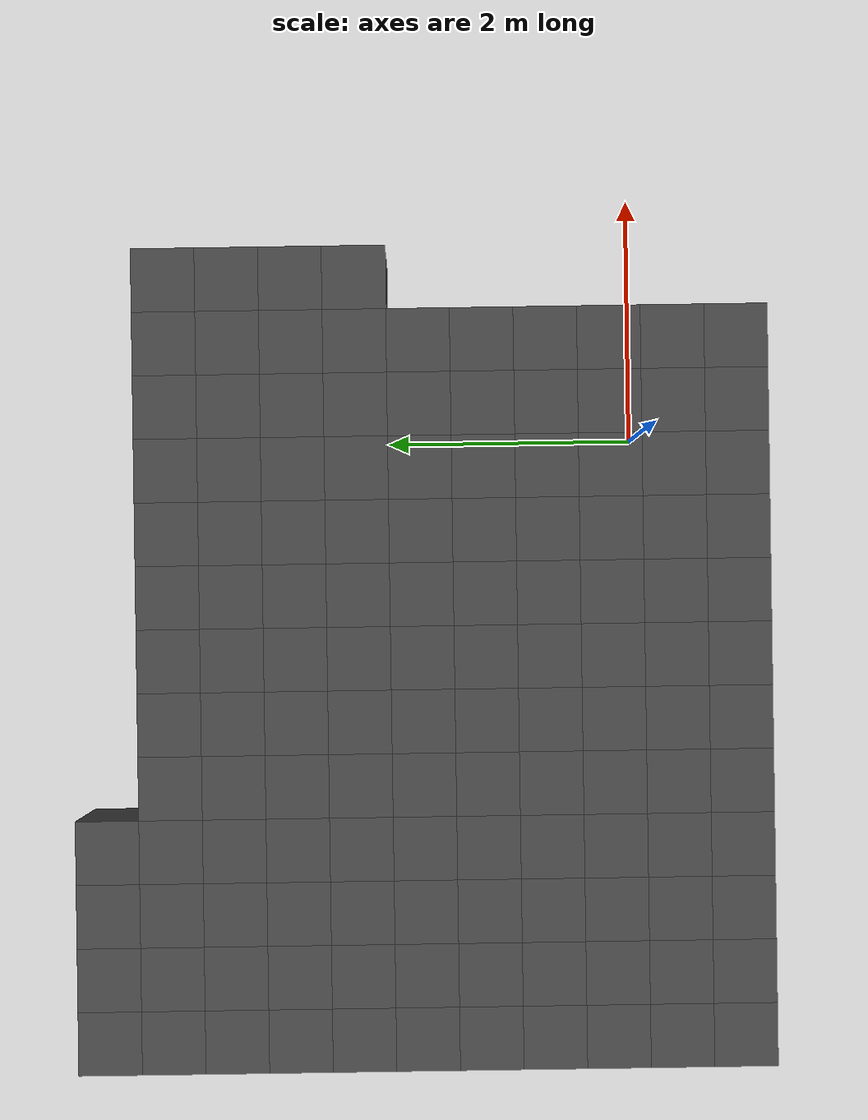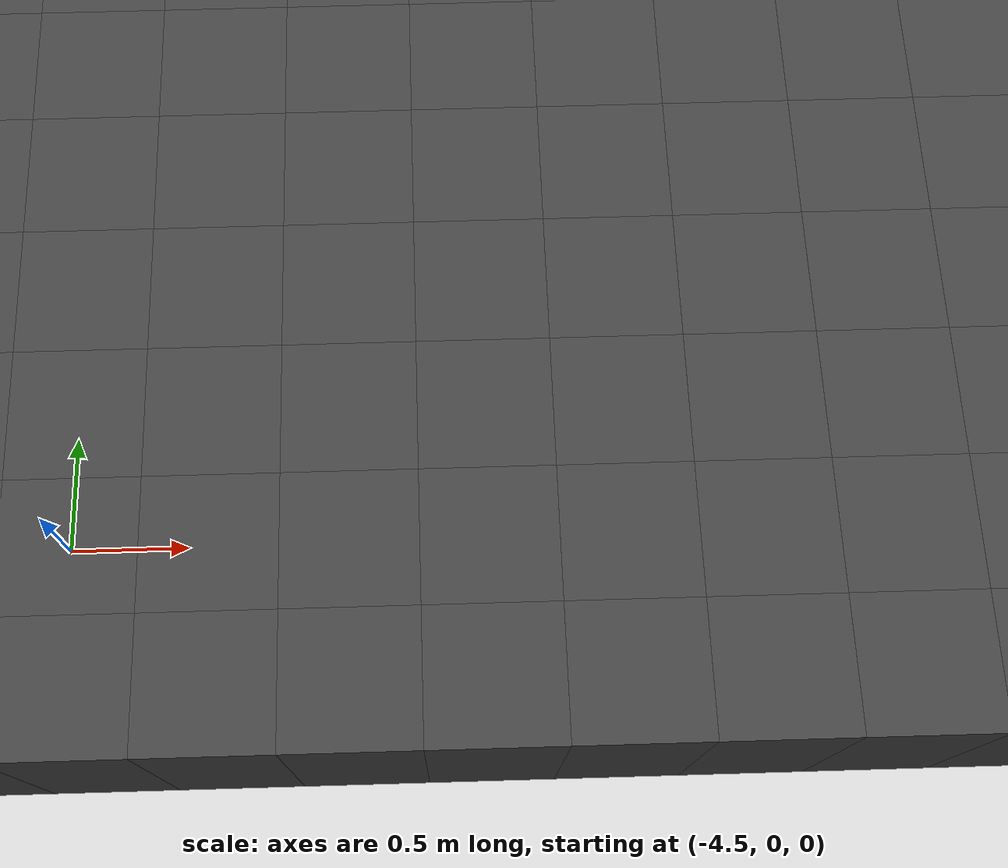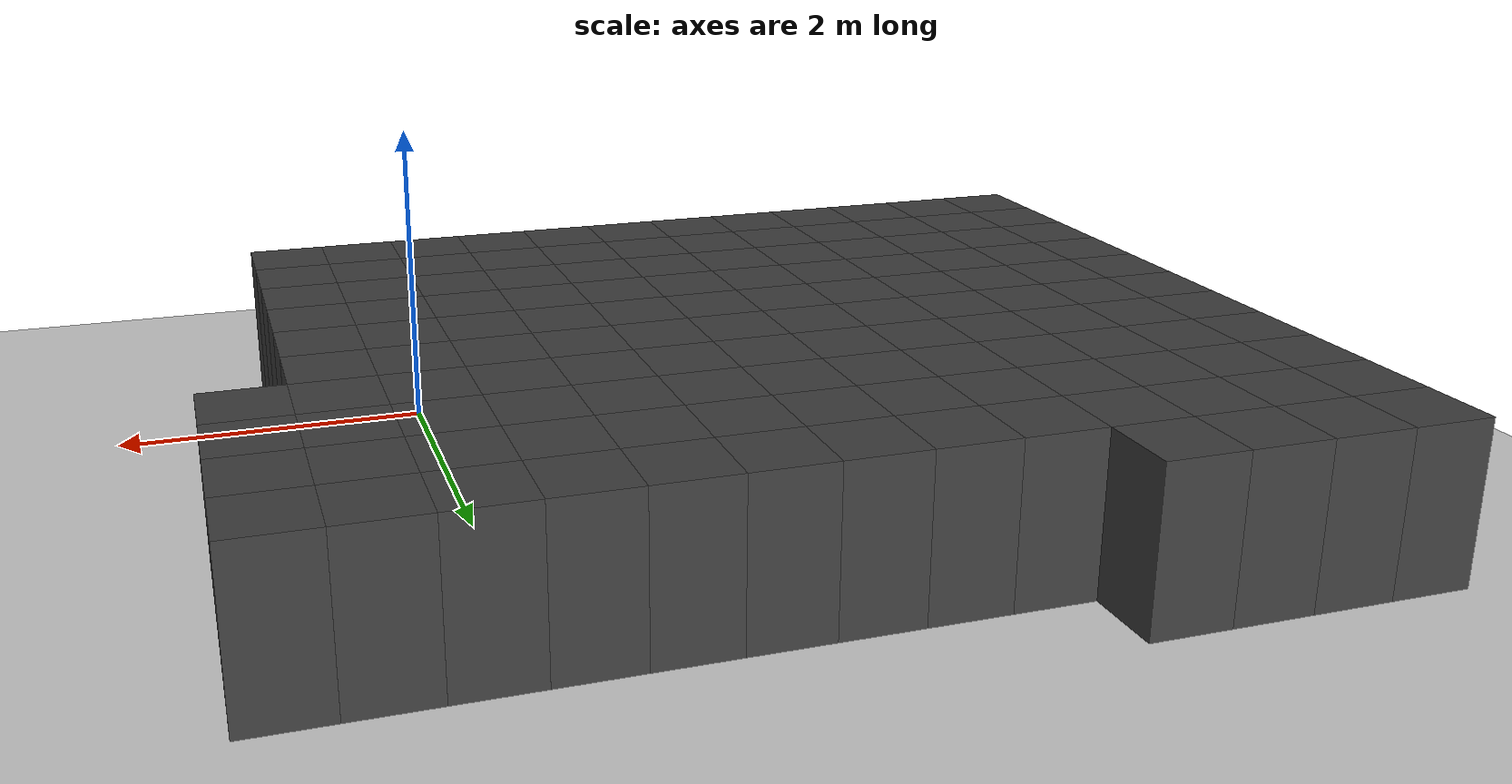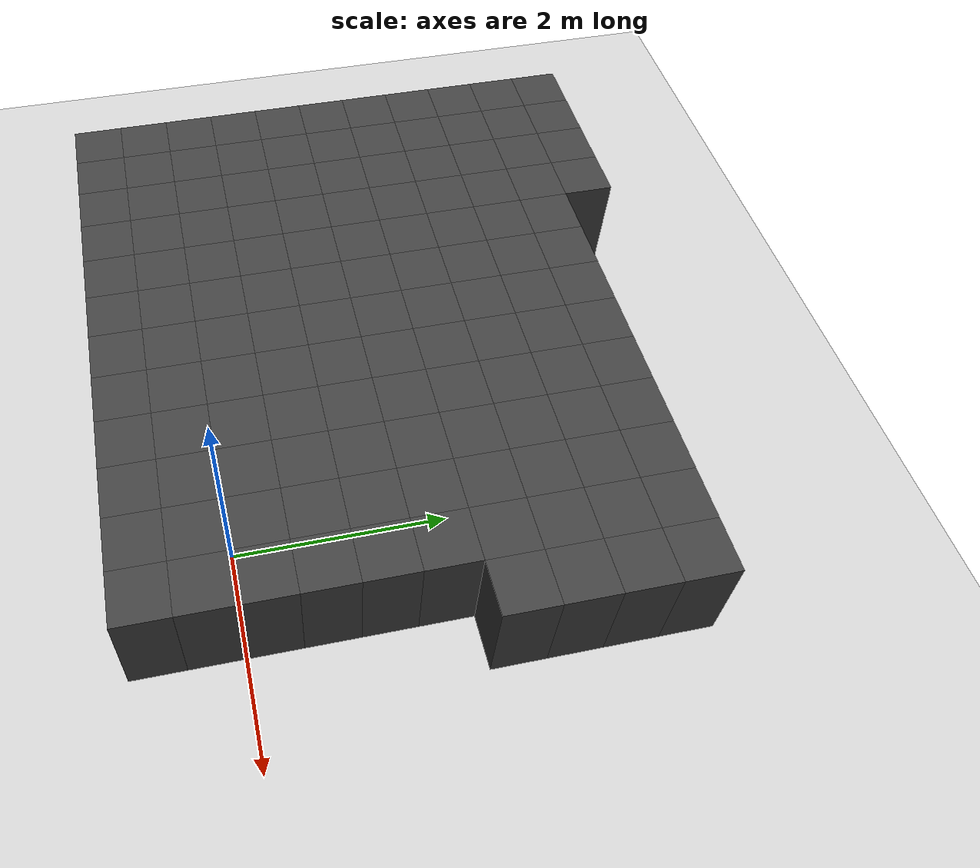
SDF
<sdf version="1.7">
 <world name="map_12356">
  <model name="ground_plane">
   <static>true</static>
   <link name="link">
    <collision name="collision">
     <geometry><plane><normal>0 0 1</normal><size>200 200</size></plane></geometry>
    </collision>
    <visual name="visual">
     <geometry><plane><normal>0 0 1</normal><size>200 200</size></plane></geometry>
     <material><ambient>0.8 0.8 0.8 1</ambient><diffuse>0.8 0.8 0.8 1</diffuse></material>
    </visual>
   </link>
  </model>
  <model name="maze_environment">
   <static>true</static>
   <link name="wall_592">
    <pose>-4.750 4.250 0.500 0 0 0</pose>
    <collision name="col"><geometry><box><size>0.5 0.5 1.0</size></box></geometry></collision>
    <visual name="vis">
     <geometry><box><size>0.5 0.5 1.0</size></box></geometry>
     <material><ambient>0.15 0.15 0.15 1</ambient><diffuse>0.25 0.25 0.25 1</diffuse></material>
    </visual>
   </link>
   <link name="wall_593">
    <pose>-4.250 4.250 0.500 0 0 0</pose>
    <collision name="col"><geometry><box><size>0.5 0.5 1.0</size></box></geometry></collision>
    <visual name="vis">
     <geometry><box><size>0.5 0.5 1.0</size></box></geometry>
     <material><ambient>0.15 0.15 0.15 1</ambient><diffuse>0.25 0.25 0.25 1</diffuse></material>
    </visual>
   </link>
   <link name="wall_594">
    <pose>-3.750 4.250 0.500 0 0 0</pose>
    <collision name="col"><geometry><box><size>0.5 0.5 1.0</size></box></geometry></collision>
    <visual name="vis">
     <geometry><box><size>0.5 0.5 1.0</size></box></geometry>
     <material><ambient>0.15 0.15 0.15 1</ambient><diffuse>0.25 0.25 0.25 1</diffuse></material>
    </visual>
   </link>
   <link name="wall_595">
    <pose>-3.250 4.250 0.500 0 0 0</pose>
    <collision name="col"><geometry><box><size>0.5 0.5 1.0</size></box></geometry></collision>
    <visual name="vis">
     <geometry><box><size>0.5 0.5 1.0</size></box></geometry>
     <material><ambient>0.15 0.15 0.15 1</ambient><diffuse>0.25 0.25 0.25 1</diffuse></material>
    </visual>
   </link>
   <link name="wall_631">
    <pose>-4.750 3.750 0.500 0 0 0</pose>
    <collision name="col"><geometry><box><size>0.5 0.5 1.0</size></box></geometry></collision>
    <visual name="vis">
     <geometry><box><size>0.5 0.5 1.0</size></box></geometry>
     <material><ambient>0.15 0.15 0.15 1</ambient><diffuse>0.25 0.25 0.25 1</diffuse></material>
    </visual>
   </link>
   <link name="wall_632">
    <pose>-4.250 3.750 0.500 0 0 0</pose>
    <collision name="col"><geometry><box><size>0.5 0.5 1.0</size></box></geometry></collision>
    <visual name="vis">
     <geometry><box><size>0.5 0.5 1.0</size></box></geometry>
     <material><ambient>0.15 0.15 0.15 1</ambient><diffuse>0.25 0.25 0.25 1</diffuse></material>
    </visual>
   </link>
   <link name="wall_633">
    <pose>-3.750 3.750 0.500 0 0 0</pose>
    <collision name="col"><geometry><box><size>0.5 0.5 1.0</size></box></geometry></collision>
    <visual name="vis">
     <geometry><box><size>0.5 0.5 1.0</size></box></geometry>
     <material><ambient>0.15 0.15 0.15 1</ambient><diffuse>0.25 0.25 0.25 1</diffuse></material>
    </visual>
   </link>
   <link name="wall_634">
    <pose>-3.250 3.750 0.500 0 0 0</pose>
    <collision name="col"><geometry><box><size>0.5 0.5 1.0</size></box></geometry></collision>
    <visual name="vis">
     <geometry><box><size>0.5 0.5 1.0</size></box></geometry>
     <material><ambient>0.15 0.15 0.15 1</ambient><diffuse>0.25 0.25 0.25 1</diffuse></material>
    </visual>
   </link>
   <link name="wall_635">
    <pose>-2.750 3.750 0.500 0 0 0</pose>
    <collision name="col"><geometry><box><size>0.5 0.5 1.0</size></box></geometry></collision>
    <visual name="vis">
     <geometry><box><size>0.5 0.5 1.0</size></box></geometry>
     <material><ambient>0.15 0.15 0.15 1</ambient><diffuse>0.25 0.25 0.25 1</diffuse></material>
    </visual>
   </link>
   <link name="wall_636">
    <pose>-2.250 3.750 0.500 0 0 0</pose>
    <collision name="col"><geometry><box><size>0.5 0.5 1.0</size></box></geometry></collision>
    <visual name="vis">
     <geometry><box><size>0.5 0.5 1.0</size></box></geometry>
     <material><ambient>0.15 0.15 0.15 1</ambient><diffuse>0.25 0.25 0.25 1</diffuse></material>
    </visual>
   </link>
   <link name="wall_637">
    <pose>-1.750 3.750 0.500 0 0 0</pose>
    <collision name="col"><geometry><box><size>0.5 0.5 1.0</size></box></geometry></collision>
    <visual name="vis">
     <geometry><box><size>0.5 0.5 1.0</size></box></geometry>
     <material><ambient>0.15 0.15 0.15 1</ambient><diffuse>0.25 0.25 0.25 1</diffuse></material>
    </visual>
   </link>
   <link name="wall_638">
    <pose>-1.250 3.750 0.500 0 0 0</pose>
    <collision name="col"><geometry><box><size>0.5 0.5 1.0</size></box></geometry></collision>
    <visual name="vis">
     <geometry><box><size>0.5 0.5 1.0</size></box></geometry>
     <material><ambient>0.15 0.15 0.15 1</ambient><diffuse>0.25 0.25 0.25 1</diffuse></material>
    </visual>
   </link>
   <link name="wall_639">
    <pose>-0.750 3.750 0.500 0 0 0</pose>
    <collision name="col"><geometry><box><size>0.5 0.5 1.0</size></box></geometry></collision>
    <visual name="vis">
     <geometry><box><size>0.5 0.5 1.0</size></box></geometry>
     <material><ambient>0.15 0.15 0.15 1</ambient><diffuse>0.25 0.25 0.25 1</diffuse></material>
    </visual>
   </link>
   <link name="wall_640">
    <pose>-0.250 3.750 0.500 0 0 0</pose>
    <collision name="col"><geometry><box><size>0.5 0.5 1.0</size></box></geometry></collision>
    <visual name="vis">
     <geometry><box><size>0.5 0.5 1.0</size></box></geometry>
     <material><ambient>0.15 0.15 0.15 1</ambient><diffuse>0.25 0.25 0.25 1</diffuse></material>
    </visual>
   </link>
   <link name="wall_641">
    <pose>0.250 3.750 0.500 0 0 0</pose>
    <collision name="col"><geometry><box><size>0.5 0.5 1.0</size></box></geometry></collision>
    <visual name="vis">
     <geometry><box><size>0.5 0.5 1.0</size></box></geometry>
     <material><ambient>0.15 0.15 0.15 1</ambient><diffuse>0.25 0.25 0.25 1</diffuse></material>
    </visual>
   </link>
   <link name="wall_642">
    <pose>0.750 3.750 0.500 0 0 0</pose>
    <collision name="col"><geometry><box><size>0.5 0.5 1.0</size></box></geometry></collision>
    <visual name="vis">
     <geometry><box><size>0.5 0.5 1.0</size></box></geometry>
     <material><ambient>0.15 0.15 0.15 1</ambient><diffuse>0.25 0.25 0.25 1</diffuse></material>
    </visual>
   </link>
   <link name="wall_643">
    <pose>1.250 3.750 0.500 0 0 0</pose>
    <collision name="col"><geometry><box><size>0.5 0.5 1.0</size></box></geometry></collision>
    <visual name="vis">
     <geometry><box><size>0.5 0.5 1.0</size></box></geometry>
     <material><ambient>0.15 0.15 0.15 1</ambient><diffuse>0.25 0.25 0.25 1</diffuse></material>
    </visual>
   </link>
   <link name="wall_670">
    <pose>-4.750 3.250 0.500 0 0 0</pose>
    <collision name="col"><geometry><box><size>0.5 0.5 1.0</size></box></geometry></collision>
    <visual name="vis">
     <geometry><box><size>0.5 0.5 1.0</size></box></geometry>
     <material><ambient>0.15 0.15 0.15 1</ambient><diffuse>0.25 0.25 0.25 1</diffuse></material>
    </visual>
   </link>
   <link name="wall_671">
    <pose>-4.250 3.250 0.500 0 0 0</pose>
    <collision name="col"><geometry><box><size>0.5 0.5 1.0</size></box></geometry></collision>
    <visual name="vis">
     <geometry><box><size>0.5 0.5 1.0</size></box></geometry>
     <material><ambient>0.15 0.15 0.15 1</ambient><diffuse>0.25 0.25 0.25 1</diffuse></material>
    </visual>
   </link>
   <link name="wall_672">
    <pose>-3.750 3.250 0.500 0 0 0</pose>
    <collision name="col"><geometry><box><size>0.5 0.5 1.0</size></box></geometry></collision>
    <visual name="vis">
     <geometry><box><size>0.5 0.5 1.0</size></box></geometry>
     <material><ambient>0.15 0.15 0.15 1</ambient><diffuse>0.25 0.25 0.25 1</diffuse></material>
    </visual>
   </link>
   <link name="wall_673">
    <pose>-3.250 3.250 0.500 0 0 0</pose>
    <collision name="col"><geometry><box><size>0.5 0.5 1.0</size></box></geometry></collision>
    <visual name="vis">
     <geometry><box><size>0.5 0.5 1.0</size></box></geometry>
     <material><ambient>0.15 0.15 0.15 1</ambient><diffuse>0.25 0.25 0.25 1</diffuse></material>
    </visual>
   </link>
   <link name="wall_674">
    <pose>-2.750 3.250 0.500 0 0 0</pose>
    <collision name="col"><geometry><box><size>0.5 0.5 1.0</size></box></geometry></collision>
    <visual name="vis">
     <geometry><box><size>0.5 0.5 1.0</size></box></geometry>
     <material><ambient>0.15 0.15 0.15 1</ambient><diffuse>0.25 0.25 0.25 1</diffuse></material>
    </visual>
   </link>
   <link name="wall_675">
    <pose>-2.250 3.250 0.500 0 0 0</pose>
    <collision name="col"><geometry><box><size>0.5 0.5 1.0</size></box></geometry></collision>
    <visual name="vis">
     <geometry><box><size>0.5 0.5 1.0</size></box></geometry>
     <material><ambient>0.15 0.15 0.15 1</ambient><diffuse>0.25 0.25 0.25 1</diffuse></material>
    </visual>
   </link>
   <link name="wall_676">
    <pose>-1.750 3.250 0.500 0 0 0</pose>
    <collision name="col"><geometry><box><size>0.5 0.5 1.0</size></box></geometry></collision>
    <visual name="vis">
     <geometry><box><size>0.5 0.5 1.0</size></box></geometry>
     <material><ambient>0.15 0.15 0.15 1</ambient><diffuse>0.25 0.25 0.25 1</diffuse></material>
    </visual>
   </link>
   <link name="wall_677">
    <pose>-1.250 3.250 0.500 0 0 0</pose>
    <collision name="col"><geometry><box><size>0.5 0.5 1.0</size></box></geometry></collision>
    <visual name="vis">
     <geometry><box><size>0.5 0.5 1.0</size></box></geometry>
     <material><ambient>0.15 0.15 0.15 1</ambient><diffuse>0.25 0.25 0.25 1</diffuse></material>
    </visual>
   </link>
   <link name="wall_678">
    <pose>-0.750 3.250 0.500 0 0 0</pose>
    <collision name="col"><geometry><box><size>0.5 0.5 1.0</size></box></geometry></collision>
    <visual name="vis">
     <geometry><box><size>0.5 0.5 1.0</size></box></geometry>
     <material><ambient>0.15 0.15 0.15 1</ambient><diffuse>0.25 0.25 0.25 1</diffuse></material>
    </visual>
   </link>
   <link name="wall_679">
    <pose>-0.250 3.250 0.500 0 0 0</pose>
    <collision name="col"><geometry><box><size>0.5 0.5 1.0</size></box></geometry></collision>
    <visual name="vis">
     <geometry><box><size>0.5 0.5 1.0</size></box></geometry>
     <material><ambient>0.15 0.15 0.15 1</ambient><diffuse>0.25 0.25 0.25 1</diffuse></material>
    </visual>
   </link>
   <link name="wall_680">
    <pose>0.250 3.250 0.500 0 0 0</pose>
    <collision name="col"><geometry><box><size>0.5 0.5 1.0</size></box></geometry></collision>
    <visual name="vis">
     <geometry><box><size>0.5 0.5 1.0</size></box></geometry>
     <material><ambient>0.15 0.15 0.15 1</ambient><diffuse>0.25 0.25 0.25 1</diffuse></material>
    </visual>
   </link>
   <link name="wall_681">
    <pose>0.750 3.250 0.500 0 0 0</pose>
    <collision name="col"><geometry><box><size>0.5 0.5 1.0</size></box></geometry></collision>
    <visual name="vis">
     <geometry><box><size>0.5 0.5 1.0</size></box></geometry>
     <material><ambient>0.15 0.15 0.15 1</ambient><diffuse>0.25 0.25 0.25 1</diffuse></material>
    </visual>
   </link>
   <link name="wall_682">
    <pose>1.250 3.250 0.500 0 0 0</pose>
    <collision name="col"><geometry><box><size>0.5 0.5 1.0</size></box></geometry></collision>
    <visual name="vis">
     <geometry><box><size>0.5 0.5 1.0</size></box></geometry>
     <material><ambient>0.15 0.15 0.15 1</ambient><diffuse>0.25 0.25 0.25 1</diffuse></material>
    </visual>
   </link>
   <link name="wall_709">
    <pose>-4.750 2.750 0.500 0 0 0</pose>
    <collision name="col"><geometry><box><size>0.5 0.5 1.0</size></box></geometry></collision>
    <visual name="vis">
     <geometry><box><size>0.5 0.5 1.0</size></box></geometry>
     <material><ambient>0.15 0.15 0.15 1</ambient><diffuse>0.25 0.25 0.25 1</diffuse></material>
    </visual>
   </link>
   <link name="wall_710">
    <pose>-4.250 2.750 0.500 0 0 0</pose>
    <collision name="col"><geometry><box><size>0.5 0.5 1.0</size></box></geometry></collision>
    <visual name="vis">
     <geometry><box><size>0.5 0.5 1.0</size></box></geometry>
     <material><ambient>0.15 0.15 0.15 1</ambient><diffuse>0.25 0.25 0.25 1</diffuse></material>
    </visual>
   </link>
   <link name="wall_711">
    <pose>-3.750 2.750 0.500 0 0 0</pose>
    <collision name="col"><geometry><box><size>0.5 0.5 1.0</size></box></geometry></collision>
    <visual name="vis">
     <geometry><box><size>0.5 0.5 1.0</size></box></geometry>
     <material><ambient>0.15 0.15 0.15 1</ambient><diffuse>0.25 0.25 0.25 1</diffuse></material>
    </visual>
   </link>
   <link name="wall_712">
    <pose>-3.250 2.750 0.500 0 0 0</pose>
    <collision name="col"><geometry><box><size>0.5 0.5 1.0</size></box></geometry></collision>
    <visual name="vis">
     <geometry><box><size>0.5 0.5 1.0</size></box></geometry>
     <material><ambient>0.15 0.15 0.15 1</ambient><diffuse>0.25 0.25 0.25 1</diffuse></material>
    </visual>
   </link>
   <link name="wall_713">
    <pose>-2.750 2.750 0.500 0 0 0</pose>
    <collision name="col"><geometry><box><size>0.5 0.5 1.0</size></box></geometry></collision>
    <visual name="vis">
     <geometry><box><size>0.5 0.5 1.0</size></box></geometry>
     <material><ambient>0.15 0.15 0.15 1</ambient><diffuse>0.25 0.25 0.25 1</diffuse></material>
    </visual>
   </link>
   <link name="wall_714">
    <pose>-2.250 2.750 0.500 0 0 0</pose>
    <collision name="col"><geometry><box><size>0.5 0.5 1.0</size></box></geometry></collision>
    <visual name="vis">
     <geometry><box><size>0.5 0.5 1.0</size></box></geometry>
     <material><ambient>0.15 0.15 0.15 1</ambient><diffuse>0.25 0.25 0.25 1</diffuse></material>
    </visual>
   </link>
   <link name="wall_715">
    <pose>-1.750 2.750 0.500 0 0 0</pose>
    <collision name="col"><geometry><box><size>0.5 0.5 1.0</size></box></geometry></collision>
    <visual name="vis">
     <geometry><box><size>0.5 0.5 1.0</size></box></geometry>
     <material><ambient>0.15 0.15 0.15 1</ambient><diffuse>0.25 0.25 0.25 1</diffuse></material>
    </visual>
   </link>
   <link name="wall_716">
    <pose>-1.250 2.750 0.500 0 0 0</pose>
    <collision name="col"><geometry><box><size>0.5 0.5 1.0</size></box></geometry></collision>
    <visual name="vis">
     <geometry><box><size>0.5 0.5 1.0</size></box></geometry>
     <material><ambient>0.15 0.15 0.15 1</ambient><diffuse>0.25 0.25 0.25 1</diffuse></material>
    </visual>
   </link>
   <link name="wall_717">
    <pose>-0.750 2.750 0.500 0 0 0</pose>
    <collision name="col"><geometry><box><size>0.5 0.5 1.0</size></box></geometry></collision>
    <visual name="vis">
     <geometry><box><size>0.5 0.5 1.0</size></box></geometry>
     <material><ambient>0.15 0.15 0.15 1</ambient><diffuse>0.25 0.25 0.25 1</diffuse></material>
    </visual>
   </link>
   <link name="wall_718">
    <pose>-0.250 2.750 0.500 0 0 0</pose>
    <collision name="col"><geometry><box><size>0.5 0.5 1.0</size></box></geometry></collision>
    <visual name="vis">
     <geometry><box><size>0.5 0.5 1.0</size></box></geometry>
     <material><ambient>0.15 0.15 0.15 1</ambient><diffuse>0.25 0.25 0.25 1</diffuse></material>
    </visual>
   </link>
   <link name="wall_719">
    <pose>0.250 2.750 0.500 0 0 0</pose>
    <collision name="col"><geometry><box><size>0.5 0.5 1.0</size></box></geometry></collision>
    <visual name="vis">
     <geometry><box><size>0.5 0.5 1.0</size></box></geometry>
     <material><ambient>0.15 0.15 0.15 1</ambient><diffuse>0.25 0.25 0.25 1</diffuse></material>
    </visual>
   </link>
   <link name="wall_720">
    <pose>0.750 2.750 0.500 0 0 0</pose>
    <collision name="col"><geometry><box><size>0.5 0.5 1.0</size></box></geometry></collision>
    <visual name="vis">
     <geometry><box><size>0.5 0.5 1.0</size></box></geometry>
     <material><ambient>0.15 0.15 0.15 1</ambient><diffuse>0.25 0.25 0.25 1</diffuse></material>
    </visual>
   </link>
   <link name="wall_721">
    <pose>1.250 2.750 0.500 0 0 0</pose>
    <collision name="col"><geometry><box><size>0.5 0.5 1.0</size></box></geometry></collision>
    <visual name="vis">
     <geometry><box><size>0.5 0.5 1.0</size></box></geometry>
     <material><ambient>0.15 0.15 0.15 1</ambient><diffuse>0.25 0.25 0.25 1</diffuse></material>
    </visual>
   </link>
   <link name="wall_751">
    <pose>-4.750 2.250 0.500 0 0 0</pose>
    <collision name="col"><geometry><box><size>0.5 0.5 1.0</size></box></geometry></collision>
    <visual name="vis">
     <geometry><box><size>0.5 0.5 1.0</size></box></geometry>
     <material><ambient>0.15 0.15 0.15 1</ambient><diffuse>0.25 0.25 0.25 1</diffuse></material>
    </visual>
   </link>
   <link name="wall_752">
    <pose>-4.250 2.250 0.500 0 0 0</pose>
    <collision name="col"><geometry><box><size>0.5 0.5 1.0</size></box></geometry></collision>
    <visual name="vis">
     <geometry><box><size>0.5 0.5 1.0</size></box></geometry>
     <material><ambient>0.15 0.15 0.15 1</ambient><diffuse>0.25 0.25 0.25 1</diffuse></material>
    </visual>
   </link>
   <link name="wall_753">
    <pose>-3.750 2.250 0.500 0 0 0</pose>
    <collision name="col"><geometry><box><size>0.5 0.5 1.0</size></box></geometry></collision>
    <visual name="vis">
     <geometry><box><size>0.5 0.5 1.0</size></box></geometry>
     <material><ambient>0.15 0.15 0.15 1</ambient><diffuse>0.25 0.25 0.25 1</diffuse></material>
    </visual>
   </link>
   <link name="wall_754">
    <pose>-3.250 2.250 0.500 0 0 0</pose>
    <collision name="col"><geometry><box><size>0.5 0.5 1.0</size></box></geometry></collision>
    <visual name="vis">
     <geometry><box><size>0.5 0.5 1.0</size></box></geometry>
     <material><ambient>0.15 0.15 0.15 1</ambient><diffuse>0.25 0.25 0.25 1</diffuse></material>
    </visual>
   </link>
   <link name="wall_755">
    <pose>-2.750 2.250 0.500 0 0 0</pose>
    <collision name="col"><geometry><box><size>0.5 0.5 1.0</size></box></geometry></collision>
    <visual name="vis">
     <geometry><box><size>0.5 0.5 1.0</size></box></geometry>
     <material><ambient>0.15 0.15 0.15 1</ambient><diffuse>0.25 0.25 0.25 1</diffuse></material>
    </visual>
   </link>
   <link name="wall_756">
    <pose>-2.250 2.250 0.500 0 0 0</pose>
    <collision name="col"><geometry><box><size>0.5 0.5 1.0</size></box></geometry></collision>
    <visual name="vis">
     <geometry><box><size>0.5 0.5 1.0</size></box></geometry>
     <material><ambient>0.15 0.15 0.15 1</ambient><diffuse>0.25 0.25 0.25 1</diffuse></material>
    </visual>
   </link>
   <link name="wall_757">
    <pose>-1.750 2.250 0.500 0 0 0</pose>
    <collision name="col"><geometry><box><size>0.5 0.5 1.0</size></box></geometry></collision>
    <visual name="vis">
     <geometry><box><size>0.5 0.5 1.0</size></box></geometry>
     <material><ambient>0.15 0.15 0.15 1</ambient><diffuse>0.25 0.25 0.25 1</diffuse></material>
    </visual>
   </link>
   <link name="wall_758">
    <pose>-1.250 2.250 0.500 0 0 0</pose>
    <collision name="col"><geometry><box><size>0.5 0.5 1.0</size></box></geometry></collision>
    <visual name="vis">
     <geometry><box><size>0.5 0.5 1.0</size></box></geometry>
     <material><ambient>0.15 0.15 0.15 1</ambient><diffuse>0.25 0.25 0.25 1</diffuse></material>
    </visual>
   </link>
   <link name="wall_759">
    <pose>-0.750 2.250 0.500 0 0 0</pose>
    <collision name="col"><geometry><box><size>0.5 0.5 1.0</size></box></geometry></collision>
    <visual name="vis">
     <geometry><box><size>0.5 0.5 1.0</size></box></geometry>
     <material><ambient>0.15 0.15 0.15 1</ambient><diffuse>0.25 0.25 0.25 1</diffuse></material>
    </visual>
   </link>
   <link name="wall_760">
    <pose>-0.250 2.250 0.500 0 0 0</pose>
    <collision name="col"><geometry><box><size>0.5 0.5 1.0</size></box></geometry></collision>
    <visual name="vis">
     <geometry><box><size>0.5 0.5 1.0</size></box></geometry>
     <material><ambient>0.15 0.15 0.15 1</ambient><diffuse>0.25 0.25 0.25 1</diffuse></material>
    </visual>
   </link>
   <link name="wall_761">
    <pose>0.250 2.250 0.500 0 0 0</pose>
    <collision name="col"><geometry><box><size>0.5 0.5 1.0</size></box></geometry></collision>
    <visual name="vis">
     <geometry><box><size>0.5 0.5 1.0</size></box></geometry>
     <material><ambient>0.15 0.15 0.15 1</ambient><diffuse>0.25 0.25 0.25 1</diffuse></material>
    </visual>
   </link>
   <link name="wall_762">
    <pose>0.750 2.250 0.500 0 0 0</pose>
    <collision name="col"><geometry><box><size>0.5 0.5 1.0</size></box></geometry></collision>
    <visual name="vis">
     <geometry><box><size>0.5 0.5 1.0</size></box></geometry>
     <material><ambient>0.15 0.15 0.15 1</ambient><diffuse>0.25 0.25 0.25 1</diffuse></material>
    </visual>
   </link>
   <link name="wall_763">
    <pose>1.250 2.250 0.500 0 0 0</pose>
    <collision name="col"><geometry><box><size>0.5 0.5 1.0</size></box></geometry></collision>
    <visual name="vis">
     <geometry><box><size>0.5 0.5 1.0</size></box></geometry>
     <material><ambient>0.15 0.15 0.15 1</ambient><diffuse>0.25 0.25 0.25 1</diffuse></material>
    </visual>
   </link>
   <link name="wall_793">
    <pose>-4.750 1.750 0.500 0 0 0</pose>
    <collision name="col"><geometry><box><size>0.5 0.5 1.0</size></box></geometry></collision>
    <visual name="vis">
     <geometry><box><size>0.5 0.5 1.0</size></box></geometry>
     <material><ambient>0.15 0.15 0.15 1</ambient><diffuse>0.25 0.25 0.25 1</diffuse></material>
    </visual>
   </link>
   <link name="wall_794">
    <pose>-4.250 1.750 0.500 0 0 0</pose>
    <collision name="col"><geometry><box><size>0.5 0.5 1.0</size></box></geometry></collision>
    <visual name="vis">
     <geometry><box><size>0.5 0.5 1.0</size></box></geometry>
     <material><ambient>0.15 0.15 0.15 1</ambient><diffuse>0.25 0.25 0.25 1</diffuse></material>
    </visual>
   </link>
   <link name="wall_795">
    <pose>-3.750 1.750 0.500 0 0 0</pose>
    <collision name="col"><geometry><box><size>0.5 0.5 1.0</size></box></geometry></collision>
    <visual name="vis">
     <geometry><box><size>0.5 0.5 1.0</size></box></geometry>
     <material><ambient>0.15 0.15 0.15 1</ambient><diffuse>0.25 0.25 0.25 1</diffuse></material>
    </visual>
   </link>
   <link name="wall_796">
    <pose>-3.250 1.750 0.500 0 0 0</pose>
    <collision name="col"><geometry><box><size>0.5 0.5 1.0</size></box></geometry></collision>
    <visual name="vis">
     <geometry><box><size>0.5 0.5 1.0</size></box></geometry>
     <material><ambient>0.15 0.15 0.15 1</ambient><diffuse>0.25 0.25 0.25 1</diffuse></material>
    </visual>
   </link>
   <link name="wall_797">
    <pose>-2.750 1.750 0.500 0 0 0</pose>
    <collision name="col"><geometry><box><size>0.5 0.5 1.0</size></box></geometry></collision>
    <visual name="vis">
     <geometry><box><size>0.5 0.5 1.0</size></box></geometry>
     <material><ambient>0.15 0.15 0.15 1</ambient><diffuse>0.25 0.25 0.25 1</diffuse></material>
    </visual>
   </link>
   <link name="wall_798">
    <pose>-2.250 1.750 0.500 0 0 0</pose>
    <collision name="col"><geometry><box><size>0.5 0.5 1.0</size></box></geometry></collision>
    <visual name="vis">
     <geometry><box><size>0.5 0.5 1.0</size></box></geometry>
     <material><ambient>0.15 0.15 0.15 1</ambient><diffuse>0.25 0.25 0.25 1</diffuse></material>
    </visual>
   </link>
   <link name="wall_799">
    <pose>-1.750 1.750 0.500 0 0 0</pose>
    <collision name="col"><geometry><box><size>0.5 0.5 1.0</size></box></geometry></collision>
    <visual name="vis">
     <geometry><box><size>0.5 0.5 1.0</size></box></geometry>
     <material><ambient>0.15 0.15 0.15 1</ambient><diffuse>0.25 0.25 0.25 1</diffuse></material>
    </visual>
   </link>
   <link name="wall_800">
    <pose>-1.250 1.750 0.500 0 0 0</pose>
    <collision name="col"><geometry><box><size>0.5 0.5 1.0</size></box></geometry></collision>
    <visual name="vis">
     <geometry><box><size>0.5 0.5 1.0</size></box></geometry>
     <material><ambient>0.15 0.15 0.15 1</ambient><diffuse>0.25 0.25 0.25 1</diffuse></material>
    </visual>
   </link>
   <link name="wall_801">
    <pose>-0.750 1.750 0.500 0 0 0</pose>
    <collision name="col"><geometry><box><size>0.5 0.5 1.0</size></box></geometry></collision>
    <visual name="vis">
     <geometry><box><size>0.5 0.5 1.0</size></box></geometry>
     <material><ambient>0.15 0.15 0.15 1</ambient><diffuse>0.25 0.25 0.25 1</diffuse></material>
    </visual>
   </link>
   <link name="wall_802">
    <pose>-0.250 1.750 0.500 0 0 0</pose>
    <collision name="col"><geometry><box><size>0.5 0.5 1.0</size></box></geometry></collision>
    <visual name="vis">
     <geometry><box><size>0.5 0.5 1.0</size></box></geometry>
     <material><ambient>0.15 0.15 0.15 1</ambient><diffuse>0.25 0.25 0.25 1</diffuse></material>
    </visual>
   </link>
   <link name="wall_803">
    <pose>0.250 1.750 0.500 0 0 0</pose>
    <collision name="col"><geometry><box><size>0.5 0.5 1.0</size></box></geometry></collision>
    <visual name="vis">
     <geometry><box><size>0.5 0.5 1.0</size></box></geometry>
     <material><ambient>0.15 0.15 0.15 1</ambient><diffuse>0.25 0.25 0.25 1</diffuse></material>
    </visual>
   </link>
   <link name="wall_804">
    <pose>0.750 1.750 0.500 0 0 0</pose>
    <collision name="col"><geometry><box><size>0.5 0.5 1.0</size></box></geometry></collision>
    <visual name="vis">
     <geometry><box><size>0.5 0.5 1.0</size></box></geometry>
     <material><ambient>0.15 0.15 0.15 1</ambient><diffuse>0.25 0.25 0.25 1</diffuse></material>
    </visual>
   </link>
   <link name="wall_835">
    <pose>-4.750 1.250 0.500 0 0 0</pose>
    <collision name="col"><geometry><box><size>0.5 0.5 1.0</size></box></geometry></collision>
    <visual name="vis">
     <geometry><box><size>0.5 0.5 1.0</size></box></geometry>
     <material><ambient>0.15 0.15 0.15 1</ambient><diffuse>0.25 0.25 0.25 1</diffuse></material>
    </visual>
   </link>
   <link name="wall_836">
    <pose>-4.250 1.250 0.500 0 0 0</pose>
    <collision name="col"><geometry><box><size>0.5 0.5 1.0</size></box></geometry></collision>
    <visual name="vis">
     <geometry><box><size>0.5 0.5 1.0</size></box></geometry>
     <material><ambient>0.15 0.15 0.15 1</ambient><diffuse>0.25 0.25 0.25 1</diffuse></material>
    </visual>
   </link>
   <link name="wall_837">
    <pose>-3.750 1.250 0.500 0 0 0</pose>
    <collision name="col"><geometry><box><size>0.5 0.5 1.0</size></box></geometry></collision>
    <visual name="vis">
     <geometry><box><size>0.5 0.5 1.0</size></box></geometry>
     <material><ambient>0.15 0.15 0.15 1</ambient><diffuse>0.25 0.25 0.25 1</diffuse></material>
    </visual>
   </link>
   <link name="wall_838">
    <pose>-3.250 1.250 0.500 0 0 0</pose>
    <collision name="col"><geometry><box><size>0.5 0.5 1.0</size></box></geometry></collision>
    <visual name="vis">
     <geometry><box><size>0.5 0.5 1.0</size></box></geometry>
     <material><ambient>0.15 0.15 0.15 1</ambient><diffuse>0.25 0.25 0.25 1</diffuse></material>
    </visual>
   </link>
   <link name="wall_839">
    <pose>-2.750 1.250 0.500 0 0 0</pose>
    <collision name="col"><geometry><box><size>0.5 0.5 1.0</size></box></geometry></collision>
    <visual name="vis">
     <geometry><box><size>0.5 0.5 1.0</size></box></geometry>
     <material><ambient>0.15 0.15 0.15 1</ambient><diffuse>0.25 0.25 0.25 1</diffuse></material>
    </visual>
   </link>
   <link name="wall_840">
    <pose>-2.250 1.250 0.500 0 0 0</pose>
    <collision name="col"><geometry><box><size>0.5 0.5 1.0</size></box></geometry></collision>
    <visual name="vis">
     <geometry><box><size>0.5 0.5 1.0</size></box></geometry>
     <material><ambient>0.15 0.15 0.15 1</ambient><diffuse>0.25 0.25 0.25 1</diffuse></material>
    </visual>
   </link>
   <link name="wall_841">
    <pose>-1.750 1.250 0.500 0 0 0</pose>
    <collision name="col"><geometry><box><size>0.5 0.5 1.0</size></box></geometry></collision>
    <visual name="vis">
     <geometry><box><size>0.5 0.5 1.0</size></box></geometry>
     <material><ambient>0.15 0.15 0.15 1</ambient><diffuse>0.25 0.25 0.25 1</diffuse></material>
    </visual>
   </link>
   <link name="wall_842">
    <pose>-1.250 1.250 0.500 0 0 0</pose>
    <collision name="col"><geometry><box><size>0.5 0.5 1.0</size></box></geometry></collision>
    <visual name="vis">
     <geometry><box><size>0.5 0.5 1.0</size></box></geometry>
     <material><ambient>0.15 0.15 0.15 1</ambient><diffuse>0.25 0.25 0.25 1</diffuse></material>
    </visual>
   </link>
   <link name="wall_843">
    <pose>-0.750 1.250 0.500 0 0 0</pose>
    <collision name="col"><geometry><box><size>0.5 0.5 1.0</size></box></geometry></collision>
    <visual name="vis">
     <geometry><box><size>0.5 0.5 1.0</size></box></geometry>
     <material><ambient>0.15 0.15 0.15 1</ambient><diffuse>0.25 0.25 0.25 1</diffuse></material>
    </visual>
   </link>
   <link name="wall_844">
    <pose>-0.250 1.250 0.500 0 0 0</pose>
    <collision name="col"><geometry><box><size>0.5 0.5 1.0</size></box></geometry></collision>
    <visual name="vis">
     <geometry><box><size>0.5 0.5 1.0</size></box></geometry>
     <material><ambient>0.15 0.15 0.15 1</ambient><diffuse>0.25 0.25 0.25 1</diffuse></material>
    </visual>
   </link>
   <link name="wall_845">
    <pose>0.250 1.250 0.500 0 0 0</pose>
    <collision name="col"><geometry><box><size>0.5 0.5 1.0</size></box></geometry></collision>
    <visual name="vis">
     <geometry><box><size>0.5 0.5 1.0</size></box></geometry>
     <material><ambient>0.15 0.15 0.15 1</ambient><diffuse>0.25 0.25 0.25 1</diffuse></material>
    </visual>
   </link>
   <link name="wall_846">
    <pose>0.750 1.250 0.500 0 0 0</pose>
    <collision name="col"><geometry><box><size>0.5 0.5 1.0</size></box></geometry></collision>
    <visual name="vis">
     <geometry><box><size>0.5 0.5 1.0</size></box></geometry>
     <material><ambient>0.15 0.15 0.15 1</ambient><diffuse>0.25 0.25 0.25 1</diffuse></material>
    </visual>
   </link>
   <link name="wall_883">
    <pose>-4.750 0.750 0.500 0 0 0</pose>
    <collision name="col"><geometry><box><size>0.5 0.5 1.0</size></box></geometry></collision>
    <visual name="vis">
     <geometry><box><size>0.5 0.5 1.0</size></box></geometry>
     <material><ambient>0.15 0.15 0.15 1</ambient><diffuse>0.25 0.25 0.25 1</diffuse></material>
    </visual>
   </link>
   <link name="wall_884">
    <pose>-4.250 0.750 0.500 0 0 0</pose>
    <collision name="col"><geometry><box><size>0.5 0.5 1.0</size></box></geometry></collision>
    <visual name="vis">
     <geometry><box><size>0.5 0.5 1.0</size></box></geometry>
     <material><ambient>0.15 0.15 0.15 1</ambient><diffuse>0.25 0.25 0.25 1</diffuse></material>
    </visual>
   </link>
   <link name="wall_885">
    <pose>-3.750 0.750 0.500 0 0 0</pose>
    <collision name="col"><geometry><box><size>0.5 0.5 1.0</size></box></geometry></collision>
    <visual name="vis">
     <geometry><box><size>0.5 0.5 1.0</size></box></geometry>
     <material><ambient>0.15 0.15 0.15 1</ambient><diffuse>0.25 0.25 0.25 1</diffuse></material>
    </visual>
   </link>
   <link name="wall_886">
    <pose>-3.250 0.750 0.500 0 0 0</pose>
    <collision name="col"><geometry><box><size>0.5 0.5 1.0</size></box></geometry></collision>
    <visual name="vis">
     <geometry><box><size>0.5 0.5 1.0</size></box></geometry>
     <material><ambient>0.15 0.15 0.15 1</ambient><diffuse>0.25 0.25 0.25 1</diffuse></material>
    </visual>
   </link>
   <link name="wall_887">
    <pose>-2.750 0.750 0.500 0 0 0</pose>
    <collision name="col"><geometry><box><size>0.5 0.5 1.0</size></box></geometry></collision>
    <visual name="vis">
     <geometry><box><size>0.5 0.5 1.0</size></box></geometry>
     <material><ambient>0.15 0.15 0.15 1</ambient><diffuse>0.25 0.25 0.25 1</diffuse></material>
    </visual>
   </link>
   <link name="wall_888">
    <pose>-2.250 0.750 0.500 0 0 0</pose>
    <collision name="col"><geometry><box><size>0.5 0.5 1.0</size></box></geometry></collision>
    <visual name="vis">
     <geometry><box><size>0.5 0.5 1.0</size></box></geometry>
     <material><ambient>0.15 0.15 0.15 1</ambient><diffuse>0.25 0.25 0.25 1</diffuse></material>
    </visual>
   </link>
   <link name="wall_889">
    <pose>-1.750 0.750 0.500 0 0 0</pose>
    <collision name="col"><geometry><box><size>0.5 0.5 1.0</size></box></geometry></collision>
    <visual name="vis">
     <geometry><box><size>0.5 0.5 1.0</size></box></geometry>
     <material><ambient>0.15 0.15 0.15 1</ambient><diffuse>0.25 0.25 0.25 1</diffuse></material>
    </visual>
   </link>
   <link name="wall_890">
    <pose>-1.250 0.750 0.500 0 0 0</pose>
    <collision name="col"><geometry><box><size>0.5 0.5 1.0</size></box></geometry></collision>
    <visual name="vis">
     <geometry><box><size>0.5 0.5 1.0</size></box></geometry>
     <material><ambient>0.15 0.15 0.15 1</ambient><diffuse>0.25 0.25 0.25 1</diffuse></material>
    </visual>
   </link>
   <link name="wall_891">
    <pose>-0.750 0.750 0.500 0 0 0</pose>
    <collision name="col"><geometry><box><size>0.5 0.5 1.0</size></box></geometry></collision>
    <visual name="vis">
     <geometry><box><size>0.5 0.5 1.0</size></box></geometry>
     <material><ambient>0.15 0.15 0.15 1</ambient><diffuse>0.25 0.25 0.25 1</diffuse></material>
    </visual>
   </link>
   <link name="wall_892">
    <pose>-0.250 0.750 0.500 0 0 0</pose>
    <collision name="col"><geometry><box><size>0.5 0.5 1.0</size></box></geometry></collision>
    <visual name="vis">
     <geometry><box><size>0.5 0.5 1.0</size></box></geometry>
     <material><ambient>0.15 0.15 0.15 1</ambient><diffuse>0.25 0.25 0.25 1</diffuse></material>
    </visual>
   </link>
   <link name="wall_893">
    <pose>0.250 0.750 0.500 0 0 0</pose>
    <collision name="col"><geometry><box><size>0.5 0.5 1.0</size></box></geometry></collision>
    <visual name="vis">
     <geometry><box><size>0.5 0.5 1.0</size></box></geometry>
     <material><ambient>0.15 0.15 0.15 1</ambient><diffuse>0.25 0.25 0.25 1</diffuse></material>
    </visual>
   </link>
   <link name="wall_894">
    <pose>0.750 0.750 0.500 0 0 0</pose>
    <collision name="col"><geometry><box><size>0.5 0.5 1.0</size></box></geometry></collision>
    <visual name="vis">
     <geometry><box><size>0.5 0.5 1.0</size></box></geometry>
     <material><ambient>0.15 0.15 0.15 1</ambient><diffuse>0.25 0.25 0.25 1</diffuse></material>
    </visual>
   </link>
   <link name="wall_931">
    <pose>-4.750 0.250 0.500 0 0 0</pose>
    <collision name="col"><geometry><box><size>0.5 0.5 1.0</size></box></geometry></collision>
    <visual name="vis">
     <geometry><box><size>0.5 0.5 1.0</size></box></geometry>
     <material><ambient>0.15 0.15 0.15 1</ambient><diffuse>0.25 0.25 0.25 1</diffuse></material>
    </visual>
   </link>
   <link name="wall_932">
    <pose>-4.250 0.250 0.500 0 0 0</pose>
    <collision name="col"><geometry><box><size>0.5 0.5 1.0</size></box></geometry></collision>
    <visual name="vis">
     <geometry><box><size>0.5 0.5 1.0</size></box></geometry>
     <material><ambient>0.15 0.15 0.15 1</ambient><diffuse>0.25 0.25 0.25 1</diffuse></material>
    </visual>
   </link>
   <link name="wall_933">
    <pose>-3.750 0.250 0.500 0 0 0</pose>
    <collision name="col"><geometry><box><size>0.5 0.5 1.0</size></box></geometry></collision>
    <visual name="vis">
     <geometry><box><size>0.5 0.5 1.0</size></box></geometry>
     <material><ambient>0.15 0.15 0.15 1</ambient><diffuse>0.25 0.25 0.25 1</diffuse></material>
    </visual>
   </link>
   <link name="wall_934">
    <pose>-3.250 0.250 0.500 0 0 0</pose>
    <collision name="col"><geometry><box><size>0.5 0.5 1.0</size></box></geometry></collision>
    <visual name="vis">
     <geometry><box><size>0.5 0.5 1.0</size></box></geometry>
     <material><ambient>0.15 0.15 0.15 1</ambient><diffuse>0.25 0.25 0.25 1</diffuse></material>
    </visual>
   </link>
   <link name="wall_935">
    <pose>-2.750 0.250 0.500 0 0 0</pose>
    <collision name="col"><geometry><box><size>0.5 0.5 1.0</size></box></geometry></collision>
    <visual name="vis">
     <geometry><box><size>0.5 0.5 1.0</size></box></geometry>
     <material><ambient>0.15 0.15 0.15 1</ambient><diffuse>0.25 0.25 0.25 1</diffuse></material>
    </visual>
   </link>
   <link name="wall_936">
    <pose>-2.250 0.250 0.500 0 0 0</pose>
    <collision name="col"><geometry><box><size>0.5 0.5 1.0</size></box></geometry></collision>
    <visual name="vis">
     <geometry><box><size>0.5 0.5 1.0</size></box></geometry>
     <material><ambient>0.15 0.15 0.15 1</ambient><diffuse>0.25 0.25 0.25 1</diffuse></material>
    </visual>
   </link>
   <link name="wall_937">
    <pose>-1.750 0.250 0.500 0 0 0</pose>
    <collision name="col"><geometry><box><size>0.5 0.5 1.0</size></box></geometry></collision>
    <visual name="vis">
     <geometry><box><size>0.5 0.5 1.0</size></box></geometry>
     <material><ambient>0.15 0.15 0.15 1</ambient><diffuse>0.25 0.25 0.25 1</diffuse></material>
    </visual>
   </link>
   <link name="wall_938">
    <pose>-1.250 0.250 0.500 0 0 0</pose>
    <collision name="col"><geometry><box><size>0.5 0.5 1.0</size></box></geometry></collision>
    <visual name="vis">
     <geometry><box><size>0.5 0.5 1.0</size></box></geometry>
     <material><ambient>0.15 0.15 0.15 1</ambient><diffuse>0.25 0.25 0.25 1</diffuse></material>
    </visual>
   </link>
   <link name="wall_939">
    <pose>-0.750 0.250 0.500 0 0 0</pose>
    <collision name="col"><geometry><box><size>0.5 0.5 1.0</size></box></geometry></collision>
    <visual name="vis">
     <geometry><box><size>0.5 0.5 1.0</size></box></geometry>
     <material><ambient>0.15 0.15 0.15 1</ambient><diffuse>0.25 0.25 0.25 1</diffuse></material>
    </visual>
   </link>
   <link name="wall_940">
    <pose>-0.250 0.250 0.500 0 0 0</pose>
    <collision name="col"><geometry><box><size>0.5 0.5 1.0</size></box></geometry></collision>
    <visual name="vis">
     <geometry><box><size>0.5 0.5 1.0</size></box></geometry>
     <material><ambient>0.15 0.15 0.15 1</ambient><diffuse>0.25 0.25 0.25 1</diffuse></material>
    </visual>
   </link>
   <link name="wall_941">
    <pose>0.250 0.250 0.500 0 0 0</pose>
    <collision name="col"><geometry><box><size>0.5 0.5 1.0</size></box></geometry></collision>
    <visual name="vis">
     <geometry><box><size>0.5 0.5 1.0</size></box></geometry>
     <material><ambient>0.15 0.15 0.15 1</ambient><diffuse>0.25 0.25 0.25 1</diffuse></material>
    </visual>
   </link>
   <link name="wall_942">
    <pose>0.750 0.250 0.500 0 0 0</pose>
    <collision name="col"><geometry><box><size>0.5 0.5 1.0</size></box></geometry></collision>
    <visual name="vis">
     <geometry><box><size>0.5 0.5 1.0</size></box></geometry>
     <material><ambient>0.15 0.15 0.15 1</ambient><diffuse>0.25 0.25 0.25 1</diffuse></material>
    </visual>
   </link>
   <link name="wall_979">
    <pose>-4.750 -0.250 0.500 0 0 0</pose>
    <collision name="col"><geometry><box><size>0.5 0.5 1.0</size></box></geometry></collision>
    <visual name="vis">
     <geometry><box><size>0.5 0.5 1.0</size></box></geometry>
     <material><ambient>0.15 0.15 0.15 1</ambient><diffuse>0.25 0.25 0.25 1</diffuse></material>
    </visual>
   </link>
   <link name="wall_980">
    <pose>-4.250 -0.250 0.500 0 0 0</pose>
    <collision name="col"><geometry><box><size>0.5 0.5 1.0</size></box></geometry></collision>
    <visual name="vis">
     <geometry><box><size>0.5 0.5 1.0</size></box></geometry>
     <material><ambient>0.15 0.15 0.15 1</ambient><diffuse>0.25 0.25 0.25 1</diffuse></material>
    </visual>
   </link>
   <link name="wall_981">
    <pose>-3.750 -0.250 0.500 0 0 0</pose>
    <collision name="col"><geometry><box><size>0.5 0.5 1.0</size></box></geometry></collision>
    <visual name="vis">
     <geometry><box><size>0.5 0.5 1.0</size></box></geometry>
     <material><ambient>0.15 0.15 0.15 1</ambient><diffuse>0.25 0.25 0.25 1</diffuse></material>
    </visual>
   </link>
   <link name="wall_982">
    <pose>-3.250 -0.250 0.500 0 0 0</pose>
    <collision name="col"><geometry><box><size>0.5 0.5 1.0</size></box></geometry></collision>
    <visual name="vis">
     <geometry><box><size>0.5 0.5 1.0</size></box></geometry>
     <material><ambient>0.15 0.15 0.15 1</ambient><diffuse>0.25 0.25 0.25 1</diffuse></material>
    </visual>
   </link>
   <link name="wall_983">
    <pose>-2.750 -0.250 0.500 0 0 0</pose>
    <collision name="col"><geometry><box><size>0.5 0.5 1.0</size></box></geometry></collision>
    <visual name="vis">
     <geometry><box><size>0.5 0.5 1.0</size></box></geometry>
     <material><ambient>0.15 0.15 0.15 1</ambient><diffuse>0.25 0.25 0.25 1</diffuse></material>
    </visual>
   </link>
   <link name="wall_984">
    <pose>-2.250 -0.250 0.500 0 0 0</pose>
    <collision name="col"><geometry><box><size>0.5 0.5 1.0</size></box></geometry></collision>
    <visual name="vis">
     <geometry><box><size>0.5 0.5 1.0</size></box></geometry>
     <material><ambient>0.15 0.15 0.15 1</ambient><diffuse>0.25 0.25 0.25 1</diffuse></material>
    </visual>
   </link>
   <link name="wall_985">
    <pose>-1.750 -0.250 0.500 0 0 0</pose>
    <collision name="col"><geometry><box><size>0.5 0.5 1.0</size></box></geometry></collision>
    <visual name="vis">
     <geometry><box><size>0.5 0.5 1.0</size></box></geometry>
     <material><ambient>0.15 0.15 0.15 1</ambient><diffuse>0.25 0.25 0.25 1</diffuse></material>
    </visual>
   </link>
   <link name="wall_986">
    <pose>-1.250 -0.250 0.500 0 0 0</pose>
    <collision name="col"><geometry><box><size>0.5 0.5 1.0</size></box></geometry></collision>
    <visual name="vis">
     <geometry><box><size>0.5 0.5 1.0</size></box></geometry>
     <material><ambient>0.15 0.15 0.15 1</ambient><diffuse>0.25 0.25 0.25 1</diffuse></material>
    </visual>
   </link>
   <link name="wall_987">
    <pose>-0.750 -0.250 0.500 0 0 0</pose>
    <collision name="col"><geometry><box><size>0.5 0.5 1.0</size></box></geometry></collision>
    <visual name="vis">
     <geometry><box><size>0.5 0.5 1.0</size></box></geometry>
     <material><ambient>0.15 0.15 0.15 1</ambient><diffuse>0.25 0.25 0.25 1</diffuse></material>
    </visual>
   </link>
   <link name="wall_988">
    <pose>-0.250 -0.250 0.500 0 0 0</pose>
    <collision name="col"><geometry><box><size>0.5 0.5 1.0</size></box></geometry></collision>
    <visual name="vis">
     <geometry><box><size>0.5 0.5 1.0</size></box></geometry>
     <material><ambient>0.15 0.15 0.15 1</ambient><diffuse>0.25 0.25 0.25 1</diffuse></material>
    </visual>
   </link>
   <link name="wall_989">
    <pose>0.250 -0.250 0.500 0 0 0</pose>
    <collision name="col"><geometry><box><size>0.5 0.5 1.0</size></box></geometry></collision>
    <visual name="vis">
     <geometry><box><size>0.5 0.5 1.0</size></box></geometry>
     <material><ambient>0.15 0.15 0.15 1</ambient><diffuse>0.25 0.25 0.25 1</diffuse></material>
    </visual>
   </link>
   <link name="wall_990">
    <pose>0.750 -0.250 0.500 0 0 0</pose>
    <collision name="col"><geometry><box><size>0.5 0.5 1.0</size></box></geometry></collision>
    <visual name="vis">
     <geometry><box><size>0.5 0.5 1.0</size></box></geometry>
     <material><ambient>0.15 0.15 0.15 1</ambient><diffuse>0.25 0.25 0.25 1</diffuse></material>
    </visual>
   </link>
   <link name="wall_1023">
    <pose>-4.750 -0.750 0.500 0 0 0</pose>
    <collision name="col"><geometry><box><size>0.5 0.5 1.0</size></box></geometry></collision>
    <visual name="vis">
     <geometry><box><size>0.5 0.5 1.0</size></box></geometry>
     <material><ambient>0.15 0.15 0.15 1</ambient><diffuse>0.25 0.25 0.25 1</diffuse></material>
    </visual>
   </link>
   <link name="wall_1024">
    <pose>-4.250 -0.750 0.500 0 0 0</pose>
    <collision name="col"><geometry><box><size>0.5 0.5 1.0</size></box></geometry></collision>
    <visual name="vis">
     <geometry><box><size>0.5 0.5 1.0</size></box></geometry>
     <material><ambient>0.15 0.15 0.15 1</ambient><diffuse>0.25 0.25 0.25 1</diffuse></material>
    </visual>
   </link>
   <link name="wall_1025">
    <pose>-3.750 -0.750 0.500 0 0 0</pose>
    <collision name="col"><geometry><box><size>0.5 0.5 1.0</size></box></geometry></collision>
    <visual name="vis">
     <geometry><box><size>0.5 0.5 1.0</size></box></geometry>
     <material><ambient>0.15 0.15 0.15 1</ambient><diffuse>0.25 0.25 0.25 1</diffuse></material>
    </visual>
   </link>
   <link name="wall_1026">
    <pose>-3.250 -0.750 0.500 0 0 0</pose>
    <collision name="col"><geometry><box><size>0.5 0.5 1.0</size></box></geometry></collision>
    <visual name="vis">
     <geometry><box><size>0.5 0.5 1.0</size></box></geometry>
     <material><ambient>0.15 0.15 0.15 1</ambient><diffuse>0.25 0.25 0.25 1</diffuse></material>
    </visual>
   </link>
   <link name="wall_1027">
    <pose>-2.750 -0.750 0.500 0 0 0</pose>
    <collision name="col"><geometry><box><size>0.5 0.5 1.0</size></box></geometry></collision>
    <visual name="vis">
     <geometry><box><size>0.5 0.5 1.0</size></box></geometry>
     <material><ambient>0.15 0.15 0.15 1</ambient><diffuse>0.25 0.25 0.25 1</diffuse></material>
    </visual>
   </link>
   <link name="wall_1028">
    <pose>-2.250 -0.750 0.500 0 0 0</pose>
    <collision name="col"><geometry><box><size>0.5 0.5 1.0</size></box></geometry></collision>
    <visual name="vis">
     <geometry><box><size>0.5 0.5 1.0</size></box></geometry>
     <material><ambient>0.15 0.15 0.15 1</ambient><diffuse>0.25 0.25 0.25 1</diffuse></material>
    </visual>
   </link>
   <link name="wall_1029">
    <pose>-1.750 -0.750 0.500 0 0 0</pose>
    <collision name="col"><geometry><box><size>0.5 0.5 1.0</size></box></geometry></collision>
    <visual name="vis">
     <geometry><box><size>0.5 0.5 1.0</size></box></geometry>
     <material><ambient>0.15 0.15 0.15 1</ambient><diffuse>0.25 0.25 0.25 1</diffuse></material>
    </visual>
   </link>
   <link name="wall_1030">
    <pose>-1.250 -0.750 0.500 0 0 0</pose>
    <collision name="col"><geometry><box><size>0.5 0.5 1.0</size></box></geometry></collision>
    <visual name="vis">
     <geometry><box><size>0.5 0.5 1.0</size></box></geometry>
     <material><ambient>0.15 0.15 0.15 1</ambient><diffuse>0.25 0.25 0.25 1</diffuse></material>
    </visual>
   </link>
   <link name="wall_1031">
    <pose>-0.750 -0.750 0.500 0 0 0</pose>
    <collision name="col"><geometry><box><size>0.5 0.5 1.0</size></box></geometry></collision>
    <visual name="vis">
     <geometry><box><size>0.5 0.5 1.0</size></box></geometry>
     <material><ambient>0.15 0.15 0.15 1</ambient><diffuse>0.25 0.25 0.25 1</diffuse></material>
    </visual>
   </link>
   <link name="wall_1032">
    <pose>-0.250 -0.750 0.500 0 0 0</pose>
    <collision name="col"><geometry><box><size>0.5 0.5 1.0</size></box></geometry></collision>
    <visual name="vis">
     <geometry><box><size>0.5 0.5 1.0</size></box></geometry>
     <material><ambient>0.15 0.15 0.15 1</ambient><diffuse>0.25 0.25 0.25 1</diffuse></material>
    </visual>
   </link>
   <link name="wall_1033">
    <pose>0.250 -0.750 0.500 0 0 0</pose>
    <collision name="col"><geometry><box><size>0.5 0.5 1.0</size></box></geometry></collision>
    <visual name="vis">
     <geometry><box><size>0.5 0.5 1.0</size></box></geometry>
     <material><ambient>0.15 0.15 0.15 1</ambient><diffuse>0.25 0.25 0.25 1</diffuse></material>
    </visual>
   </link>
   <link name="wall_1034">
    <pose>0.750 -0.750 0.500 0 0 0</pose>
    <collision name="col"><geometry><box><size>0.5 0.5 1.0</size></box></geometry></collision>
    <visual name="vis">
     <geometry><box><size>0.5 0.5 1.0</size></box></geometry>
     <material><ambient>0.15 0.15 0.15 1</ambient><diffuse>0.25 0.25 0.25 1</diffuse></material>
    </visual>
   </link>
  </model>
 </world>
</sdf>
